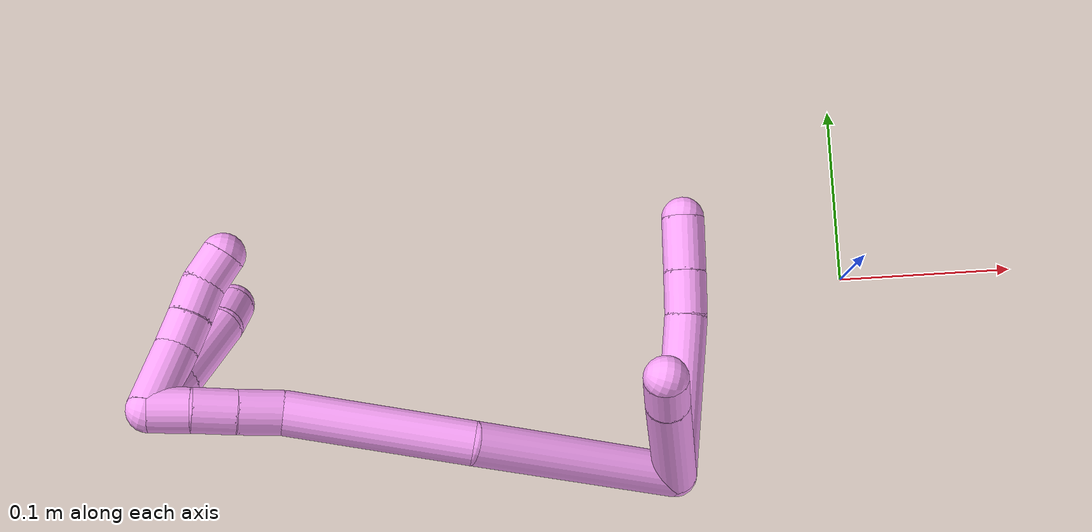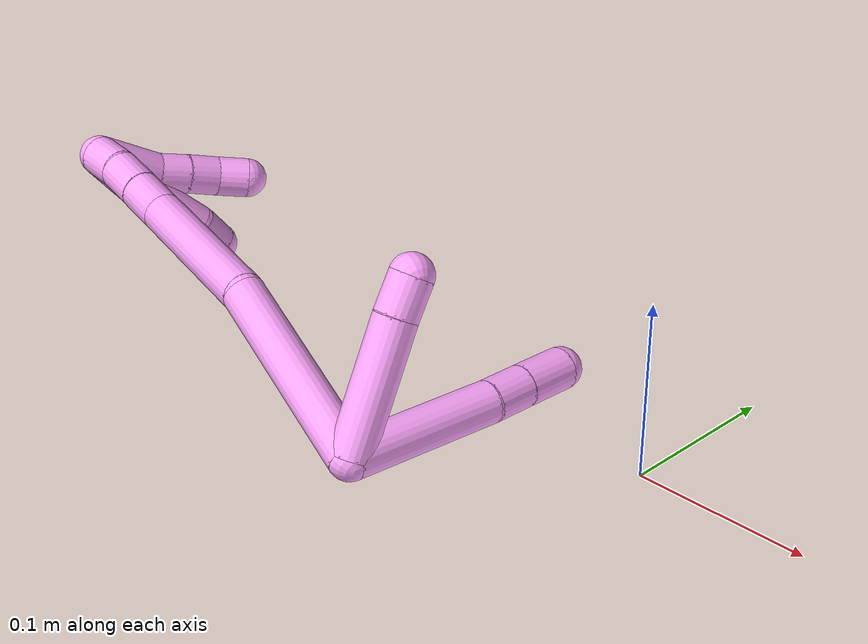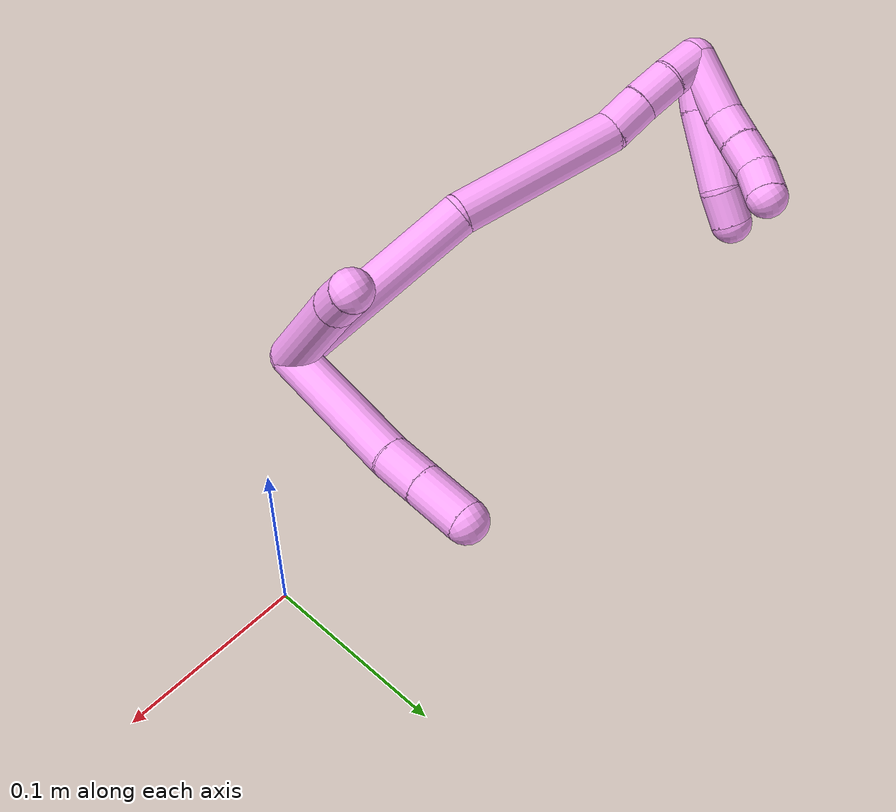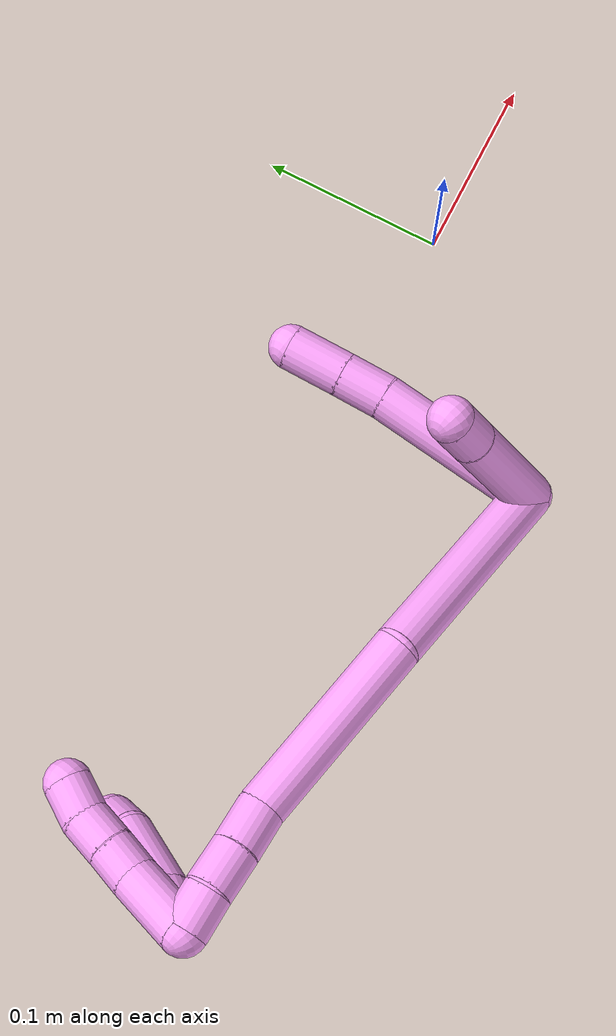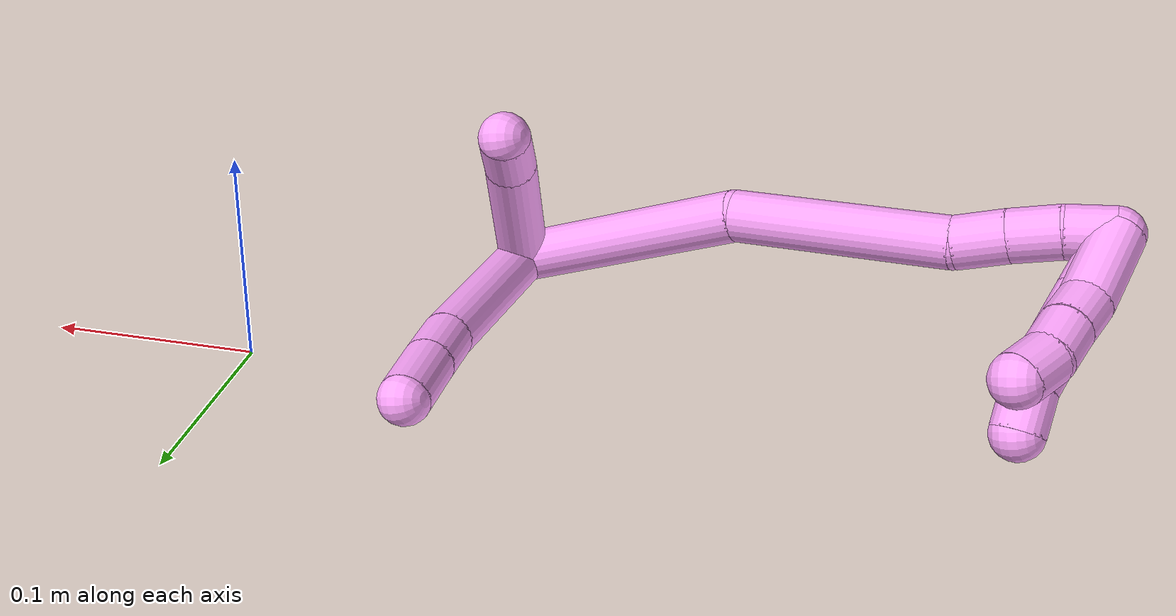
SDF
<sdf version="1.7">
 <world name="default">
  <model name="4">
   <static>0</static>
   <link name="4">
    <collision name="collision-cylinder-e_1_2_8">
     <pose>0.030137 0.03433 0.007176 -1.36474 0.709856 -0.585048</pose>
     <geometry><cylinder><radius>0.0125</radius><length>0.092483</length></cylinder></geometry>
     <surface>
      <friction><ode><mu>1.16</mu><mu2>1.16</mu2><slip1>0</slip1><slip2>0</slip2></ode></friction>
      <contact><ode><kp>1e+06</kp><kd>1</kd><max_vel>0</max_vel><min_depth>0.001</min_depth></ode></contact>
     </surface>
    </collision>
    <visual name="visual-cylinder-e_1_2_8">
     <pose>0.030137 0.03433 0.007176 -1.36474 0.709856 -0.585048</pose>
     <geometry><cylinder><radius>0.0125</radius><length>0.092483</length></cylinder></geometry>
     <material><ambient>1 0.65098 0.996078 1</ambient></material>
    </visual>
    <collision name="collision-cylinder-e_2_8_9">
     <pose>0.068008 0.078292 0.017421 -1.26236 0.653103 -0.485337</pose>
     <geometry><cylinder><radius>0.0125</radius><length>0.025458</length></cylinder></geometry>
     <surface>
      <friction><ode><mu>1.16</mu><mu2>1.16</mu2><slip1>0</slip1><slip2>0</slip2></ode></friction>
      <contact><ode><kp>1e+06</kp><kd>1</kd><max_vel>0</max_vel><min_depth>0.001</min_depth></ode></contact>
     </surface>
    </collision>
    <visual name="visual-cylinder-e_2_8_9">
     <pose>0.068008 0.078292 0.017421 -1.26236 0.653103 -0.485337</pose>
     <geometry><cylinder><radius>0.0125</radius><length>0.025458</length></cylinder></geometry>
     <material><ambient>1 0.65098 0.996078 1</ambient></material>
    </visual>
    <collision name="collision-cylinder-e_3_9_6">
     <pose>0.085254 0.100217 0.024413 -1.26181 0.635199 -0.471346</pose>
     <geometry><cylinder><radius>0.0125</radius><length>0.032059</length></cylinder></geometry>
     <surface>
      <friction><ode><mu>1.16</mu><mu2>1.16</mu2><slip1>0</slip1><slip2>0</slip2></ode></friction>
      <contact><ode><kp>1e+06</kp><kd>1</kd><max_vel>0</max_vel><min_depth>0.001</min_depth></ode></contact>
     </surface>
    </collision>
    <visual name="visual-cylinder-e_3_9_6">
     <pose>0.085254 0.100217 0.024413 -1.26181 0.635199 -0.471346</pose>
     <geometry><cylinder><radius>0.0125</radius><length>0.032059</length></cylinder></geometry>
     <material><ambient>1 0.65098 0.996078 1</ambient></material>
    </visual>
    <collision name="collision-cylinder-e_1_2_10">
     <pose>0.033932 -0.008152 0.016129 0.467974 1.08142 0.284282</pose>
     <geometry><cylinder><radius>0.0125</radius><length>0.076888</length></cylinder></geometry>
     <surface>
      <friction><ode><mu>1.16</mu><mu2>1.16</mu2><slip1>0</slip1><slip2>0</slip2></ode></friction>
      <contact><ode><kp>1e+06</kp><kd>1</kd><max_vel>0</max_vel><min_depth>0.001</min_depth></ode></contact>
     </surface>
    </collision>
    <visual name="visual-cylinder-e_1_2_10">
     <pose>0.033932 -0.008152 0.016129 0.467974 1.08142 0.284282</pose>
     <geometry><cylinder><radius>0.0125</radius><length>0.076888</length></cylinder></geometry>
     <material><ambient>1 0.65098 0.996078 1</ambient></material>
    </visual>
    <collision name="collision-cylinder-e_2_10_5">
     <pose>0.078272 -0.018102 0.036943 0.366471 1.12148 0.231706</pose>
     <geometry><cylinder><radius>0.0125</radius><length>0.023112</length></cylinder></geometry>
     <surface>
      <friction><ode><mu>1.16</mu><mu2>1.16</mu2><slip1>0</slip1><slip2>0</slip2></ode></friction>
      <contact><ode><kp>1e+06</kp><kd>1</kd><max_vel>0</max_vel><min_depth>0.001</min_depth></ode></contact>
     </surface>
    </collision>
    <visual name="visual-cylinder-e_2_10_5">
     <pose>0.078272 -0.018102 0.036943 0.366471 1.12148 0.231706</pose>
     <geometry><cylinder><radius>0.0125</radius><length>0.023112</length></cylinder></geometry>
     <material><ambient>1 0.65098 0.996078 1</ambient></material>
    </visual>
    <collision name="collision-cylinder-e_1_2_11">
     <pose>0.002058 -0.008692 0.060894 0.141782 0.033451 0.002376</pose>
     <geometry><cylinder><radius>0.0125</radius><length>0.123092</length></cylinder></geometry>
     <surface>
      <friction><ode><mu>1.16</mu><mu2>1.16</mu2><slip1>0</slip1><slip2>0</slip2></ode></friction>
      <contact><ode><kp>1e+06</kp><kd>1</kd><max_vel>0</max_vel><min_depth>0.001</min_depth></ode></contact>
     </surface>
    </collision>
    <visual name="visual-cylinder-e_1_2_11">
     <pose>0.002058 -0.008692 0.060894 0.141782 0.033451 0.002376</pose>
     <geometry><cylinder><radius>0.0125</radius><length>0.123092</length></cylinder></geometry>
     <material><ambient>1 0.65098 0.996078 1</ambient></material>
    </visual>
    <collision name="collision-cylinder-e_2_11_12">
     <pose>-0.005749 -0.013611 0.173495 -0.072839 -0.188051 0.006872</pose>
     <geometry><cylinder><radius>0.0125</radius><length>0.105548</length></cylinder></geometry>
     <surface>
      <friction><ode><mu>1.16</mu><mu2>1.16</mu2><slip1>0</slip1><slip2>0</slip2></ode></friction>
      <contact><ode><kp>1e+06</kp><kd>1</kd><max_vel>0</max_vel><min_depth>0.001</min_depth></ode></contact>
     </surface>
    </collision>
    <visual name="visual-cylinder-e_2_11_12">
     <pose>-0.005749 -0.013611 0.173495 -0.072839 -0.188051 0.006872</pose>
     <geometry><cylinder><radius>0.0125</radius><length>0.105548</length></cylinder></geometry>
     <material><ambient>1 0.65098 0.996078 1</ambient></material>
    </visual>
    <collision name="collision-cylinder-e_3_12_13">
     <pose>-0.017303 -0.012023 0.237306 0.178576 -0.136418 -0.012232</pose>
     <geometry><cylinder><radius>0.0125</radius><length>0.024831</length></cylinder></geometry>
     <surface>
      <friction><ode><mu>1.16</mu><mu2>1.16</mu2><slip1>0</slip1><slip2>0</slip2></ode></friction>
      <contact><ode><kp>1e+06</kp><kd>1</kd><max_vel>0</max_vel><min_depth>0.001</min_depth></ode></contact>
     </surface>
    </collision>
    <visual name="visual-cylinder-e_3_12_13">
     <pose>-0.017303 -0.012023 0.237306 0.178576 -0.136418 -0.012232</pose>
     <geometry><cylinder><radius>0.0125</radius><length>0.024831</length></cylinder></geometry>
     <material><ambient>1 0.65098 0.996078 1</ambient></material>
    </visual>
    <collision name="collision-cylinder-e_4_13_14">
     <pose>-0.020782 -0.015724 0.261171 0.128214 -0.149801 -0.009634</pose>
     <geometry><cylinder><radius>0.0125</radius><length>0.023985</length></cylinder></geometry>
     <surface>
      <friction><ode><mu>1.16</mu><mu2>1.16</mu2><slip1>0</slip1><slip2>0</slip2></ode></friction>
      <contact><ode><kp>1e+06</kp><kd>1</kd><max_vel>0</max_vel><min_depth>0.001</min_depth></ode></contact>
     </surface>
    </collision>
    <visual name="visual-cylinder-e_4_13_14">
     <pose>-0.020782 -0.015724 0.261171 0.128214 -0.149801 -0.009634</pose>
     <geometry><cylinder><radius>0.0125</radius><length>0.023985</length></cylinder></geometry>
     <material><ambient>1 0.65098 0.996078 1</ambient></material>
    </visual>
    <collision name="collision-cylinder-e_5_14_1">
     <pose>-0.02567 -0.017894 0.28375 0.060318 -0.278447 -0.008455</pose>
     <geometry><cylinder><radius>0.0125</radius><length>0.022544</length></cylinder></geometry>
     <surface>
      <friction><ode><mu>1.16</mu><mu2>1.16</mu2><slip1>0</slip1><slip2>0</slip2></ode></friction>
      <contact><ode><kp>1e+06</kp><kd>1</kd><max_vel>0</max_vel><min_depth>0.001</min_depth></ode></contact>
     </surface>
    </collision>
    <visual name="visual-cylinder-e_5_14_1">
     <pose>-0.02567 -0.017894 0.28375 0.060318 -0.278447 -0.008455</pose>
     <geometry><cylinder><radius>0.0125</radius><length>0.022544</length></cylinder></geometry>
     <material><ambient>1 0.65098 0.996078 1</ambient></material>
    </visual>
    <collision name="collision-cylinder-e_1_1_15">
     <pose>-0.02933 -0.004666 0.288597 -1.97701 -0.037159 0.056426</pose>
     <geometry><cylinder><radius>0.0125</radius><length>0.030243</length></cylinder></geometry>
     <surface>
      <friction><ode><mu>1.16</mu><mu2>1.16</mu2><slip1>0</slip1><slip2>0</slip2></ode></friction>
      <contact><ode><kp>1e+06</kp><kd>1</kd><max_vel>0</max_vel><min_depth>0.001</min_depth></ode></contact>
     </surface>
    </collision>
    <visual name="visual-cylinder-e_1_1_15">
     <pose>-0.02933 -0.004666 0.288597 -1.97701 -0.037159 0.056426</pose>
     <geometry><cylinder><radius>0.0125</radius><length>0.030243</length></cylinder></geometry>
     <material><ambient>1 0.65098 0.996078 1</ambient></material>
    </visual>
    <collision name="collision-cylinder-e_2_15_16">
     <pose>-0.027413 0.032095 0.274662 -1.90578 0.101943 -0.143309</pose>
     <geometry><cylinder><radius>0.0125</radius><length>0.048704</length></cylinder></geometry>
     <surface>
      <friction><ode><mu>1.16</mu><mu2>1.16</mu2><slip1>0</slip1><slip2>0</slip2></ode></friction>
      <contact><ode><kp>1e+06</kp><kd>1</kd><max_vel>0</max_vel><min_depth>0.001</min_depth></ode></contact>
     </surface>
    </collision>
    <visual name="visual-cylinder-e_2_15_16">
     <pose>-0.027413 0.032095 0.274662 -1.90578 0.101943 -0.143309</pose>
     <geometry><cylinder><radius>0.0125</radius><length>0.048704</length></cylinder></geometry>
     <material><ambient>1 0.65098 0.996078 1</ambient></material>
    </visual>
    <collision name="collision-cylinder-e_3_16_4">
     <pose>-0.02617 0.065251 0.264783 -1.75496 -0.117592 0.141447</pose>
     <geometry><cylinder><radius>0.0125</radius><length>0.021053</length></cylinder></geometry>
     <surface>
      <friction><ode><mu>1.16</mu><mu2>1.16</mu2><slip1>0</slip1><slip2>0</slip2></ode></friction>
      <contact><ode><kp>1e+06</kp><kd>1</kd><max_vel>0</max_vel><min_depth>0.001</min_depth></ode></contact>
     </surface>
    </collision>
    <visual name="visual-cylinder-e_3_16_4">
     <pose>-0.02617 0.065251 0.264783 -1.75496 -0.117592 0.141447</pose>
     <geometry><cylinder><radius>0.0125</radius><length>0.021053</length></cylinder></geometry>
     <material><ambient>1 0.65098 0.996078 1</ambient></material>
    </visual>
    <collision name="collision-cylinder-e_1_1_17">
     <pose>-0.022875 0.00013 0.291557 -1.73061 0.301971 -0.353534</pose>
     <geometry><cylinder><radius>0.0125</radius><length>0.03963</length></cylinder></geometry>
     <surface>
      <friction><ode><mu>1.16</mu><mu2>1.16</mu2><slip1>0</slip1><slip2>0</slip2></ode></friction>
      <contact><ode><kp>1e+06</kp><kd>1</kd><max_vel>0</max_vel><min_depth>0.001</min_depth></ode></contact>
     </surface>
    </collision>
    <visual name="visual-cylinder-e_1_1_17">
     <pose>-0.022875 0.00013 0.291557 -1.73061 0.301971 -0.353534</pose>
     <geometry><cylinder><radius>0.0125</radius><length>0.03963</length></cylinder></geometry>
     <material><ambient>1 0.65098 0.996078 1</ambient></material>
    </visual>
    <collision name="collision-cylinder-e_2_17_18">
     <pose>-0.011512 0.027066 0.28715 -1.73837 0.578527 -0.677236</pose>
     <geometry><cylinder><radius>0.0125</radius><length>0.020008</length></cylinder></geometry>
     <surface>
      <friction><ode><mu>1.16</mu><mu2>1.16</mu2><slip1>0</slip1><slip2>0</slip2></ode></friction>
      <contact><ode><kp>1e+06</kp><kd>1</kd><max_vel>0</max_vel><min_depth>0.001</min_depth></ode></contact>
     </surface>
    </collision>
    <visual name="visual-cylinder-e_2_17_18">
     <pose>-0.011512 0.027066 0.28715 -1.73837 0.578527 -0.677236</pose>
     <geometry><cylinder><radius>0.0125</radius><length>0.020008</length></cylinder></geometry>
     <material><ambient>1 0.65098 0.996078 1</ambient></material>
    </visual>
    <collision name="collision-cylinder-e_3_18_19">
     <pose>-0.000925 0.044009 0.284474 -1.71694 0.527717 -0.60638</pose>
     <geometry><cylinder><radius>0.0125</radius><length>0.02032</length></cylinder></geometry>
     <surface>
      <friction><ode><mu>1.16</mu><mu2>1.16</mu2><slip1>0</slip1><slip2>0</slip2></ode></friction>
      <contact><ode><kp>1e+06</kp><kd>1</kd><max_vel>0</max_vel><min_depth>0.001</min_depth></ode></contact>
     </surface>
    </collision>
    <visual name="visual-cylinder-e_3_18_19">
     <pose>-0.000925 0.044009 0.284474 -1.71694 0.527717 -0.60638</pose>
     <geometry><cylinder><radius>0.0125</radius><length>0.02032</length></cylinder></geometry>
     <material><ambient>1 0.65098 0.996078 1</ambient></material>
    </visual>
    <collision name="collision-cylinder-e_4_19_3">
     <pose>0.010292 0.059945 0.279939 -1.99295 0.654629 -0.966432</pose>
     <geometry><cylinder><radius>0.0125</radius><length>0.020042</length></cylinder></geometry>
     <surface>
      <friction><ode><mu>1.16</mu><mu2>1.16</mu2><slip1>0</slip1><slip2>0</slip2></ode></friction>
      <contact><ode><kp>1e+06</kp><kd>1</kd><max_vel>0</max_vel><min_depth>0.001</min_depth></ode></contact>
     </surface>
    </collision>
    <visual name="visual-cylinder-e_4_19_3">
     <pose>0.010292 0.059945 0.279939 -1.99295 0.654629 -0.966432</pose>
     <geometry><cylinder><radius>0.0125</radius><length>0.020042</length></cylinder></geometry>
     <material><ambient>1 0.65098 0.996078 1</ambient></material>
    </visual>
    <collision name="collision-sphere-3">
     <pose>0.016394 0.067197 0.276682 0 -0 0</pose>
     <geometry><sphere><radius>0.0125</radius></sphere></geometry>
     <surface>
      <friction><ode><mu>1.16</mu><mu2>1.16</mu2><slip1>0</slip1><slip2>0</slip2></ode></friction>
      <contact><ode><kp>1e+06</kp><kd>1</kd><max_vel>0</max_vel><min_depth>0.001</min_depth></ode></contact>
     </surface>
    </collision>
    <visual name="visual-sphere-3">
     <pose>0.016394 0.067197 0.276682 0 -0 0</pose>
     <geometry><sphere><radius>0.0125</radius></sphere></geometry>
     <material><ambient>1 0.65098 0.996078 1</ambient></material>
    </visual>
    <collision name="collision-sphere-19">
     <pose>0.004191 0.052694 0.283196 0 -0 0</pose>
     <geometry><sphere><radius>0.0125</radius></sphere></geometry>
     <surface>
      <friction><ode><mu>1.16</mu><mu2>1.16</mu2><slip1>0</slip1><slip2>0</slip2></ode></friction>
      <contact><ode><kp>1e+06</kp><kd>1</kd><max_vel>0</max_vel><min_depth>0.001</min_depth></ode></contact>
     </surface>
    </collision>
    <visual name="visual-sphere-19">
     <pose>0.004191 0.052694 0.283196 0 -0 0</pose>
     <geometry><sphere><radius>0.0125</radius></sphere></geometry>
     <material><ambient>1 0.65098 0.996078 1</ambient></material>
    </visual>
    <collision name="collision-sphere-5">
     <pose>0.088681 -0.0199 0.041629 0 -0 0</pose>
     <geometry><sphere><radius>0.0125</radius></sphere></geometry>
     <surface>
      <friction><ode><mu>1.16</mu><mu2>1.16</mu2><slip1>0</slip1><slip2>0</slip2></ode></friction>
      <contact><ode><kp>1e+06</kp><kd>1</kd><max_vel>0</max_vel><min_depth>0.001</min_depth></ode></contact>
     </surface>
    </collision>
    <visual name="visual-sphere-5">
     <pose>0.088681 -0.0199 0.041629 0 -0 0</pose>
     <geometry><sphere><radius>0.0125</radius></sphere></geometry>
     <material><ambient>1 0.65098 0.996078 1</ambient></material>
    </visual>
    <collision name="collision-sphere-10">
     <pose>0.067863 -0.016303 0.032257 0 -0 0</pose>
     <geometry><sphere><radius>0.0125</radius></sphere></geometry>
     <surface>
      <friction><ode><mu>1.16</mu><mu2>1.16</mu2><slip1>0</slip1><slip2>0</slip2></ode></friction>
      <contact><ode><kp>1e+06</kp><kd>1</kd><max_vel>0</max_vel><min_depth>0.001</min_depth></ode></contact>
     </surface>
    </collision>
    <visual name="visual-sphere-10">
     <pose>0.067863 -0.016303 0.032257 0 -0 0</pose>
     <geometry><sphere><radius>0.0125</radius></sphere></geometry>
     <material><ambient>1 0.65098 0.996078 1</ambient></material>
    </visual>
    <collision name="collision-sphere-6">
     <pose>0.094765 0.112509 0.028337 0 -0 0</pose>
     <geometry><sphere><radius>0.0125</radius></sphere></geometry>
     <surface>
      <friction><ode><mu>1.16</mu><mu2>1.16</mu2><slip1>0</slip1><slip2>0</slip2></ode></friction>
      <contact><ode><kp>1e+06</kp><kd>1</kd><max_vel>0</max_vel><min_depth>0.001</min_depth></ode></contact>
     </surface>
    </collision>
    <visual name="visual-sphere-6">
     <pose>0.094765 0.112509 0.028337 0 -0 0</pose>
     <geometry><sphere><radius>0.0125</radius></sphere></geometry>
     <material><ambient>1 0.65098 0.996078 1</ambient></material>
    </visual>
    <collision name="collision-sphere-9">
     <pose>0.075743 0.087925 0.020489 0 -0 0</pose>
     <geometry><sphere><radius>0.0125</radius></sphere></geometry>
     <surface>
      <friction><ode><mu>1.16</mu><mu2>1.16</mu2><slip1>0</slip1><slip2>0</slip2></ode></friction>
      <contact><ode><kp>1e+06</kp><kd>1</kd><max_vel>0</max_vel><min_depth>0.001</min_depth></ode></contact>
     </surface>
    </collision>
    <visual name="visual-sphere-9">
     <pose>0.075743 0.087925 0.020489 0 -0 0</pose>
     <geometry><sphere><radius>0.0125</radius></sphere></geometry>
     <material><ambient>1 0.65098 0.996078 1</ambient></material>
    </visual>
    <collision name="collision-sphere-2">
     <geometry><sphere><radius>0.0125</radius></sphere></geometry>
     <surface>
      <friction><ode><mu>1.16</mu><mu2>1.16</mu2><slip1>0</slip1><slip2>0</slip2></ode></friction>
      <contact><ode><kp>1e+06</kp><kd>1</kd><max_vel>0</max_vel><min_depth>0.001</min_depth></ode></contact>
     </surface>
    </collision>
    <visual name="visual-sphere-2">
     <geometry><sphere><radius>0.0125</radius></sphere></geometry>
     <material><ambient>1 0.65098 0.996078 1</ambient></material>
    </visual>
    <collision name="collision-sphere-8">
     <pose>0.060273 0.06866 0.014352 0 -0 0</pose>
     <geometry><sphere><radius>0.0125</radius></sphere></geometry>
     <surface>
      <friction><ode><mu>1.16</mu><mu2>1.16</mu2><slip1>0</slip1><slip2>0</slip2></ode></friction>
      <contact><ode><kp>1e+06</kp><kd>1</kd><max_vel>0</max_vel><min_depth>0.001</min_depth></ode></contact>
     </surface>
    </collision>
    <visual name="visual-sphere-8">
     <pose>0.060273 0.06866 0.014352 0 -0 0</pose>
     <geometry><sphere><radius>0.0125</radius></sphere></geometry>
     <material><ambient>1 0.65098 0.996078 1</ambient></material>
    </visual>
    <collision name="collision-sphere-11">
     <pose>0.004117 -0.017384 0.121789 0 -0 0</pose>
     <geometry><sphere><radius>0.0125</radius></sphere></geometry>
     <surface>
      <friction><ode><mu>1.16</mu><mu2>1.16</mu2><slip1>0</slip1><slip2>0</slip2></ode></friction>
      <contact><ode><kp>1e+06</kp><kd>1</kd><max_vel>0</max_vel><min_depth>0.001</min_depth></ode></contact>
     </surface>
    </collision>
    <visual name="visual-sphere-11">
     <pose>0.004117 -0.017384 0.121789 0 -0 0</pose>
     <geometry><sphere><radius>0.0125</radius></sphere></geometry>
     <material><ambient>1 0.65098 0.996078 1</ambient></material>
    </visual>
    <collision name="collision-sphere-12">
     <pose>-0.015615 -0.009838 0.225201 0 -0 0</pose>
     <geometry><sphere><radius>0.0125</radius></sphere></geometry>
     <surface>
      <friction><ode><mu>1.16</mu><mu2>1.16</mu2><slip1>0</slip1><slip2>0</slip2></ode></friction>
      <contact><ode><kp>1e+06</kp><kd>1</kd><max_vel>0</max_vel><min_depth>0.001</min_depth></ode></contact>
     </surface>
    </collision>
    <visual name="visual-sphere-12">
     <pose>-0.015615 -0.009838 0.225201 0 -0 0</pose>
     <geometry><sphere><radius>0.0125</radius></sphere></geometry>
     <material><ambient>1 0.65098 0.996078 1</ambient></material>
    </visual>
    <collision name="collision-sphere-13">
     <pose>-0.018992 -0.014208 0.249411 0 -0 0</pose>
     <geometry><sphere><radius>0.0125</radius></sphere></geometry>
     <surface>
      <friction><ode><mu>1.16</mu><mu2>1.16</mu2><slip1>0</slip1><slip2>0</slip2></ode></friction>
      <contact><ode><kp>1e+06</kp><kd>1</kd><max_vel>0</max_vel><min_depth>0.001</min_depth></ode></contact>
     </surface>
    </collision>
    <visual name="visual-sphere-13">
     <pose>-0.018992 -0.014208 0.249411 0 -0 0</pose>
     <geometry><sphere><radius>0.0125</radius></sphere></geometry>
     <material><ambient>1 0.65098 0.996078 1</ambient></material>
    </visual>
    <collision name="collision-sphere-14">
     <pose>-0.022571 -0.01724 0.272932 0 -0 0</pose>
     <geometry><sphere><radius>0.0125</radius></sphere></geometry>
     <surface>
      <friction><ode><mu>1.16</mu><mu2>1.16</mu2><slip1>0</slip1><slip2>0</slip2></ode></friction>
      <contact><ode><kp>1e+06</kp><kd>1</kd><max_vel>0</max_vel><min_depth>0.001</min_depth></ode></contact>
     </surface>
    </collision>
    <visual name="visual-sphere-14">
     <pose>-0.022571 -0.01724 0.272932 0 -0 0</pose>
     <geometry><sphere><radius>0.0125</radius></sphere></geometry>
     <material><ambient>1 0.65098 0.996078 1</ambient></material>
    </visual>
    <collision name="collision-sphere-1">
     <pose>-0.028768 -0.018547 0.294568 0 -0 0</pose>
     <geometry><sphere><radius>0.0125</radius></sphere></geometry>
     <surface>
      <friction><ode><mu>1.16</mu><mu2>1.16</mu2><slip1>0</slip1><slip2>0</slip2></ode></friction>
      <contact><ode><kp>1e+06</kp><kd>1</kd><max_vel>0</max_vel><min_depth>0.001</min_depth></ode></contact>
     </surface>
    </collision>
    <visual name="visual-sphere-1">
     <pose>-0.028768 -0.018547 0.294568 0 -0 0</pose>
     <geometry><sphere><radius>0.0125</radius></sphere></geometry>
     <material><ambient>1 0.65098 0.996078 1</ambient></material>
    </visual>
    <collision name="collision-sphere-18">
     <pose>-0.006041 0.035325 0.285753 0 -0 0</pose>
     <geometry><sphere><radius>0.0125</radius></sphere></geometry>
     <surface>
      <friction><ode><mu>1.16</mu><mu2>1.16</mu2><slip1>0</slip1><slip2>0</slip2></ode></friction>
      <contact><ode><kp>1e+06</kp><kd>1</kd><max_vel>0</max_vel><min_depth>0.001</min_depth></ode></contact>
     </surface>
    </collision>
    <visual name="visual-sphere-18">
     <pose>-0.006041 0.035325 0.285753 0 -0 0</pose>
     <geometry><sphere><radius>0.0125</radius></sphere></geometry>
     <material><ambient>1 0.65098 0.996078 1</ambient></material>
    </visual>
    <collision name="collision-sphere-15">
     <pose>-0.029891 0.009216 0.282626 0 -0 0</pose>
     <geometry><sphere><radius>0.0125</radius></sphere></geometry>
     <surface>
      <friction><ode><mu>1.16</mu><mu2>1.16</mu2><slip1>0</slip1><slip2>0</slip2></ode></friction>
      <contact><ode><kp>1e+06</kp><kd>1</kd><max_vel>0</max_vel><min_depth>0.001</min_depth></ode></contact>
     </surface>
    </collision>
    <visual name="visual-sphere-15">
     <pose>-0.029891 0.009216 0.282626 0 -0 0</pose>
     <geometry><sphere><radius>0.0125</radius></sphere></geometry>
     <material><ambient>1 0.65098 0.996078 1</ambient></material>
    </visual>
    <collision name="collision-sphere-16">
     <pose>-0.024935 0.054973 0.266698 0 -0 0</pose>
     <geometry><sphere><radius>0.0125</radius></sphere></geometry>
     <surface>
      <friction><ode><mu>1.16</mu><mu2>1.16</mu2><slip1>0</slip1><slip2>0</slip2></ode></friction>
      <contact><ode><kp>1e+06</kp><kd>1</kd><max_vel>0</max_vel><min_depth>0.001</min_depth></ode></contact>
     </surface>
    </collision>
    <visual name="visual-sphere-16">
     <pose>-0.024935 0.054973 0.266698 0 -0 0</pose>
     <geometry><sphere><radius>0.0125</radius></sphere></geometry>
     <material><ambient>1 0.65098 0.996078 1</ambient></material>
    </visual>
    <collision name="collision-sphere-4">
     <pose>-0.027405 0.075528 0.262869 0 -0 0</pose>
     <geometry><sphere><radius>0.0125</radius></sphere></geometry>
     <surface>
      <friction><ode><mu>1.16</mu><mu2>1.16</mu2><slip1>0</slip1><slip2>0</slip2></ode></friction>
      <contact><ode><kp>1e+06</kp><kd>1</kd><max_vel>0</max_vel><min_depth>0.001</min_depth></ode></contact>
     </surface>
    </collision>
    <visual name="visual-sphere-4">
     <pose>-0.027405 0.075528 0.262869 0 -0 0</pose>
     <geometry><sphere><radius>0.0125</radius></sphere></geometry>
     <material><ambient>1 0.65098 0.996078 1</ambient></material>
    </visual>
    <collision name="collision-sphere-17">
     <pose>-0.016982 0.018808 0.288547 0 -0 0</pose>
     <geometry><sphere><radius>0.0125</radius></sphere></geometry>
     <surface>
      <friction><ode><mu>1.16</mu><mu2>1.16</mu2><slip1>0</slip1><slip2>0</slip2></ode></friction>
      <contact><ode><kp>1e+06</kp><kd>1</kd><max_vel>0</max_vel><min_depth>0.001</min_depth></ode></contact>
     </surface>
    </collision>
    <visual name="visual-sphere-17">
     <pose>-0.016982 0.018808 0.288547 0 -0 0</pose>
     <geometry><sphere><radius>0.0125</radius></sphere></geometry>
     <material><ambient>1 0.65098 0.996078 1</ambient></material>
    </visual>
    <inertial>
     <pose>0.008116 0.012251 0.139621 0 -0 0</pose>
     <mass>0.75</mass>
     <inertia>
      <ixx>0.000344</ixx>
      <ixy>0</ixy>
      <ixz>0</ixz>
      <iyy>0.000332</iyy>
      <iyz>0</iyz>
      <izz>-0.00011</izz>
     </inertia>
    </inertial>
   </link>
   <pose>-0.105147 -0.108866 0.01149 -1.18257 -0.780055 0.998033</pose>
  </model>
 </world>
</sdf>
